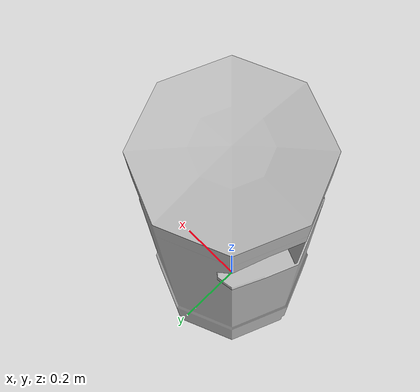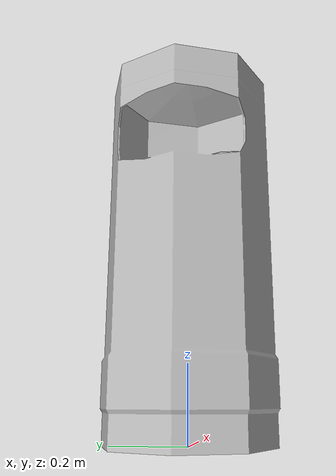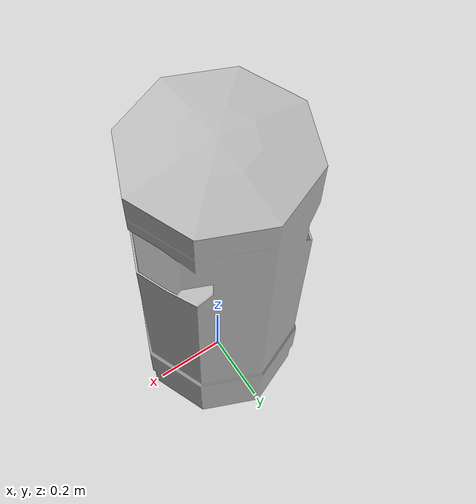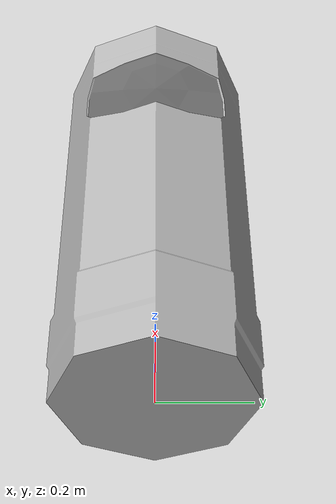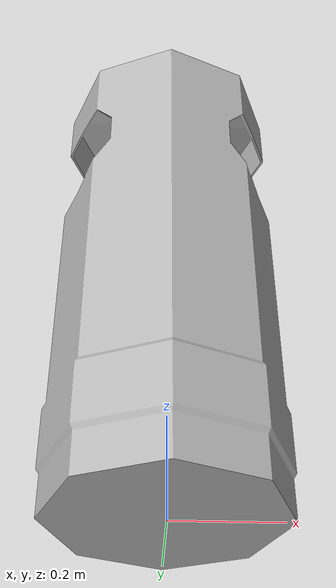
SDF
<?xml version="1.0"?>

<sdf version="1.6">
  <model name='LitterBin'>
    <static>true</static>
    <link name="body">
      <pose>0 0 0 0 0 0</pose>

        <visual name="visual">
          <geometry>
            <mesh><uri>model://LitterBin/meshes/Litter.obj</uri></mesh>
          </geometry>
        </visual>

        <collision name="collision">
          <geometry>
            <mesh><uri>model://LitterBin/meshes/Litter.obj</uri></mesh>
          </geometry>
        </collision>

    </link>
  </model>
</sdf>
